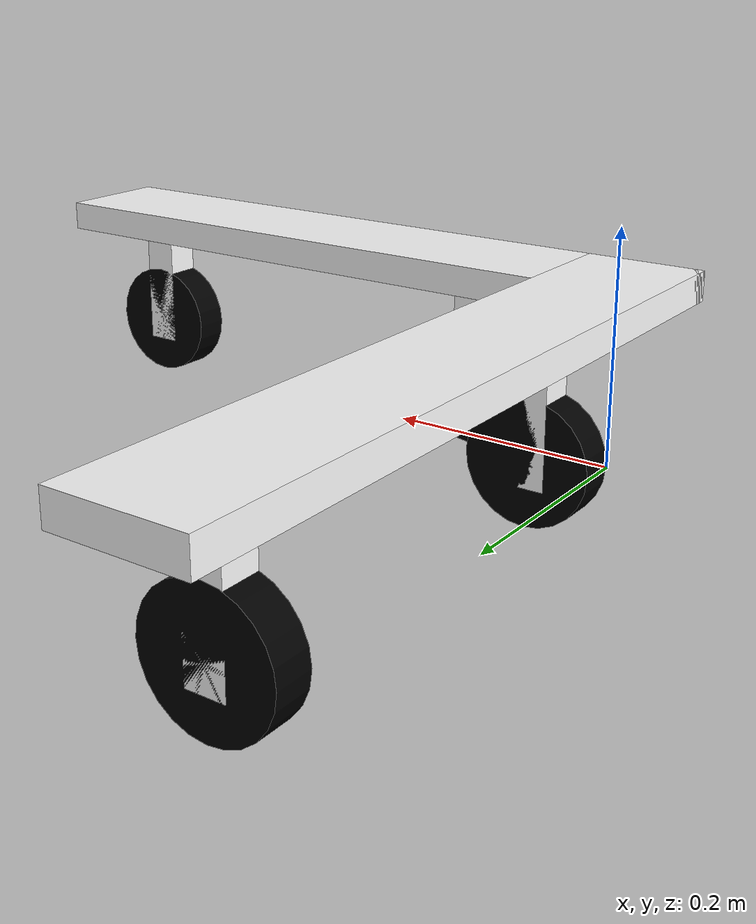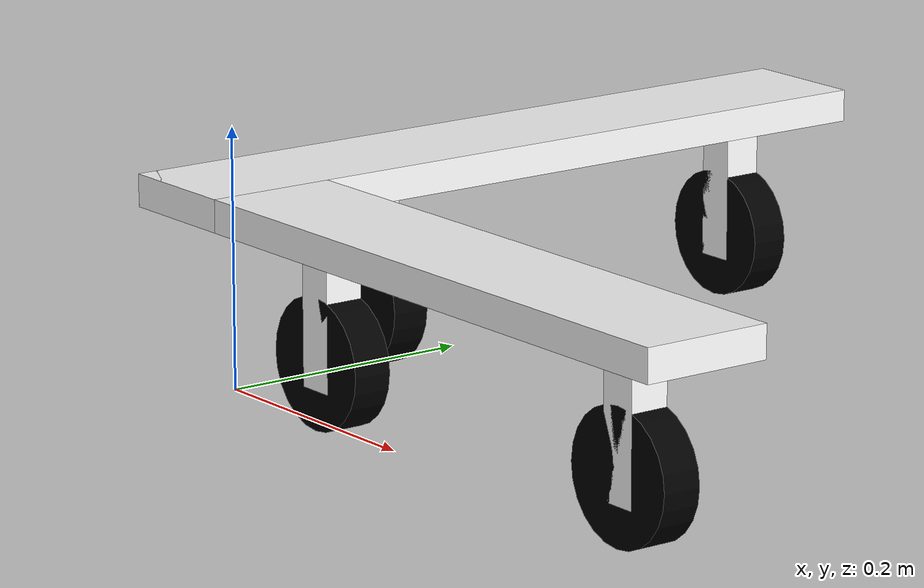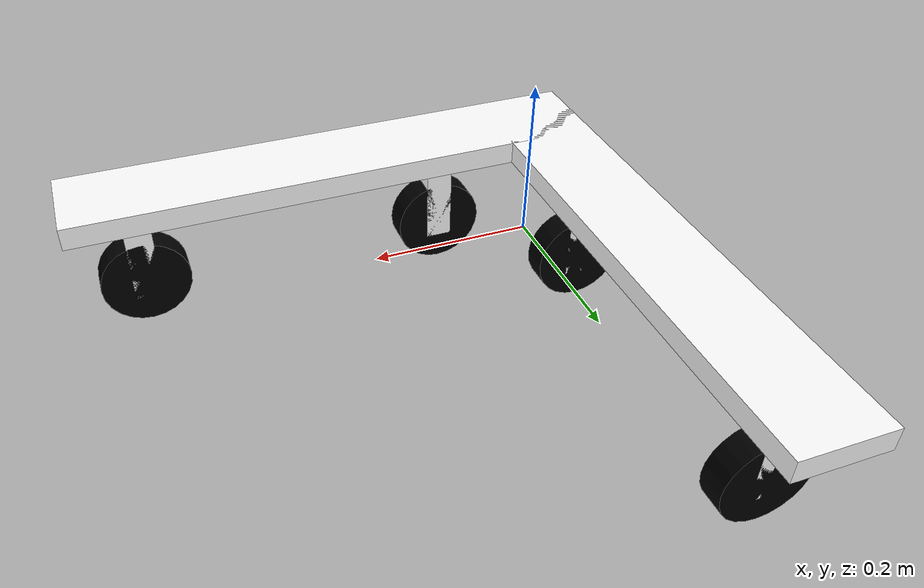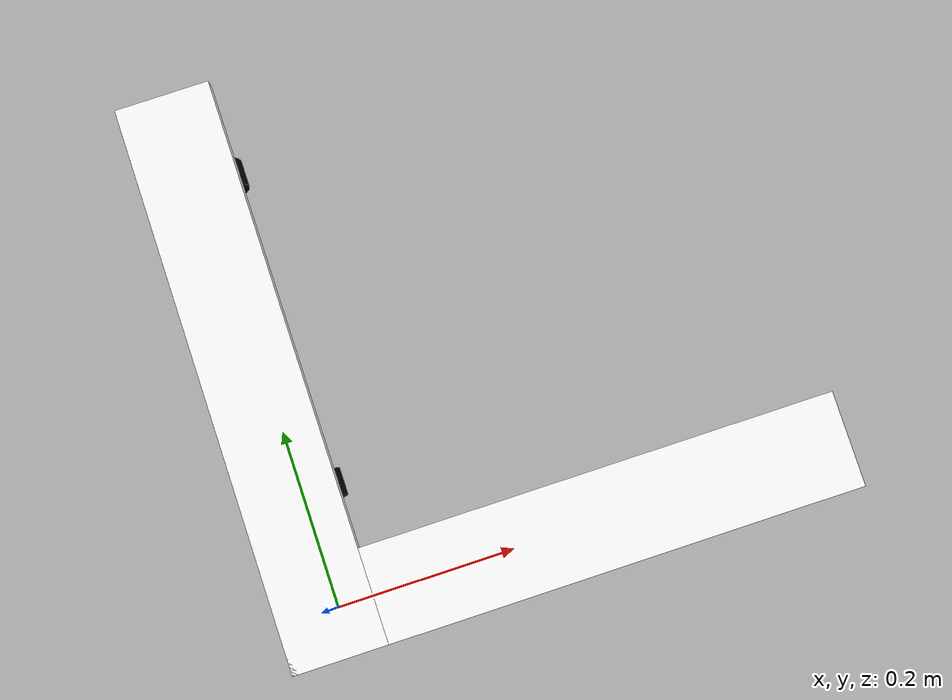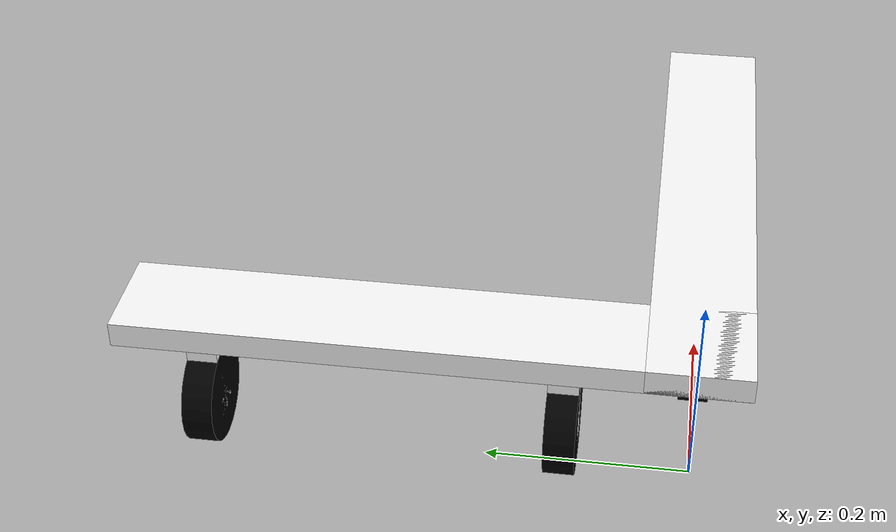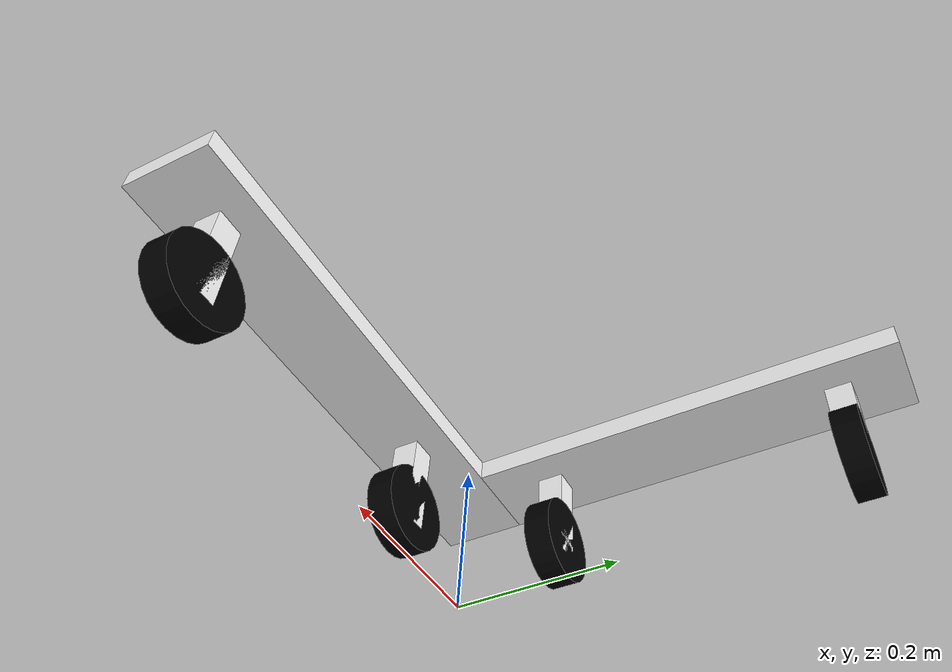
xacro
<?xml version="1.0"?>
<robot xmlns:xacro="http://www.ros.org/wiki/xacro" name="AR_0">

	<xacro:include filename="$(find robot_description_pkg)/urdf/wheel.urdf.xacro" />
	<xacro:include filename="$(find robot_description_pkg)/urdf/steering_column.urdf.xacro" />
	<xacro:include filename="$(find robot_description_pkg)/urdf/transmission.urdf.xacro" />
	<xacro:include filename="$(find robot_description_pkg)/urdf/arm.urdf.xacro" />

	<!-- properties -->
	<!--All units in m-kg-s-radians unit system -->
	<xacro:property name="M_PI" value="3.1415926535897931" />
	<xacro:property name="M_PI_2" value="1.570796327" />
	<xacro:property name="DEG_TO_RAD" value="0.017453293" />

	<!-- friction coefficients -->
	<xacro:property name="MU_1" value="10000" />
	<xacro:property name="MU_2" value="10000" />

	<xacro:property name="arm_mass" value="0.4" />
	<xacro:property name="steer_link_mass" value="0.5" />
	<xacro:property name="wheel_mass" value="0.3" />

	<xacro:property name="robot_height" value="0.15" />
	<xacro:property name="axis_offset" value="0.125" />
	<xacro:property name="steer_link_length" value="0.12" />
	<xacro:property name="steer_link_width" value="0.03" />
	<xacro:property name="wheel_radius" value="0.05" />
	<xacro:property name="wheel_width" value="0.03" />
	<xacro:property name="arm_length" value="0.6" />
	<xacro:property name="arm_width" value="0.1" />
	<xacro:property name="arm_thickness" value="0.025" />

	 <!-- Macros for calculating inertia -->
	<xacro:macro name="cylinder_inertia" params="m r h">
		<inertia  ixx="${m*(3*r*r+h*h)/12}" ixy = "0" ixz = "0"
		iyy="${m*(3*r*r+h*h)/12}" iyz = "0" izz="${m*r*r/2}" />
	</xacro:macro>

	<xacro:macro name="cuboid_inertia" params="m w h l">
		<inertia  ixx="${m*(h*h+l*l)/12}" ixy = "0" ixz = "0"
		iyy="${m*(w*w+l*l)/12}" iyz = "0" izz="${m*(h*h+w*w)/12}" />
	</xacro:macro>

	<!-- Materials -->
	<material name="black">
		<color rgba="0 0 0 1"/>
	</material>
	<material name="white">
		<color rgba="1 1 1 1"/>
	</material>

	<!-- BASE-FOOTPRINT -->
 	<!-- base_footprint is a fictitious link(frame)that is on the ground right below base_link origin -->
	<link name="base_footprint">
		<visual>
			<origin xyz="0 0 0" rpy="0 0 0" />
			<geometry>
				<box size="0.001 0.001 0.001" />
			</geometry>
		</visual>
	</link>

	<gazebo reference="base_footprint">
		<turnGravityOff>false</turnGravityOff>
	</gazebo>

	<!-- left arm -->
	<xacro:arm arm_name="left_arm" arm_length="${arm_length}" arm_width="${arm_width}"
						arm_thickness="${arm_thickness}" arm_mass="${arm_mass}"
						rotation_angle="0" X="${(arm_length-arm_width)/2}" Y="0" robot_height="${robot_height}" />

	<!-- right arm -->
	<xacro:arm arm_name="right_arm" arm_length="${arm_length}" arm_width="${arm_width}"
						arm_thickness="${arm_thickness}" arm_mass="${arm_mass}"
						rotation_angle="${M_PI_2}" X="0" Y="${(arm_length-arm_width)/2}" robot_height="${robot_height}" />

	<!-- Joint: connect arms to base -->
	<joint name="base_footprint_joint_l" type="fixed">
		<origin xyz="0 0 0" rpy="0 0 0" />
		<parent link="base_footprint"/>
		<child link="left_arm" />
	</joint>

	<joint name="base_footprint_joint_r" type="fixed">
		<origin xyz="0 0 0" rpy="0 0 0" />
		<parent link="base_footprint"/>
		<child link="right_arm" />
	</joint>

	<!-- steering link l1 -->
	<xacro:steering_column steering_link_name="steering_link_l1" steer_link_width=
		"${steer_link_width}" steer_link_length="${steer_link_length}" steer_link_mass="${steer_link_mass}" robot_height="${robot_height}" />

	<!-- steering link l2 -->
	<xacro:steering_column steering_link_name="steering_link_l2" steer_link_width=
		"${steer_link_width}" steer_link_length="${steer_link_length}" steer_link_mass="${steer_link_mass}" robot_height="${robot_height}" />

	<!-- steering link r1 -->
	<xacro:steering_column steering_link_name="steering_link_r1" steer_link_width=
		"${steer_link_width}" steer_link_length="${steer_link_length}" steer_link_mass="${steer_link_mass}" robot_height="${robot_height}" />

	<!-- steering link r2 -->
	<xacro:steering_column steering_link_name="steering_link_r2" steer_link_width=
		"${steer_link_width}" steer_link_length="${steer_link_length}" steer_link_mass="${steer_link_mass}" robot_height="${robot_height}" />

	<!-- yaw joint l1 -->
	<joint name="yaw_joint_l1" type="continuous">
		<parent link="left_arm"/>
		<child link="steering_link_l1"/>
		<origin xyz="${axis_offset} 0 0" rpy="0 0 ${M_PI}"/>
		<axis xyz="0 0 1"/>
	</joint>

	<!-- yaw joint l2 -->
	<joint name="yaw_joint_l2" type="continuous">
		<parent link="left_arm"/>
		<child link="steering_link_l2"/>
		<origin xyz="${arm_length-axis_offset} 0 0" rpy="0 0 ${M_PI}"/>
		<axis xyz="0 0 1"/>
	</joint>

	<!-- yaw joint r1 -->
	<joint name="yaw_joint_r1" type="continuous">
		<parent link="right_arm"/>
		<child link="steering_link_r1"/>
		<origin xyz="0 ${axis_offset} 0" rpy="0 0 ${M_PI}"/>
		<axis xyz="0 0 1"/>
	</joint>

	<!-- yaw joint r2 -->
	<joint name="yaw_joint_r2" type="continuous">
		<parent link="right_arm"/>
		<child link="steering_link_r2"/>
		<origin xyz="0 ${arm_length-axis_offset} 0" rpy="0 0 ${M_PI}"/>
		<axis xyz="0 0 1"/>
	</joint>

	<!-- wheel-r1 -->
	<xacro:wheel wheel_name="r1_wheel" wheel_width="${wheel_width}" wheel_radius="
		${wheel_radius}" wheel_mass="${wheel_mass}" MU_1="${MU_1}" MU_2="${MU_2}"
		M_PI_2="${M_PI_2}"/>

	<!-- wheel-r2 -->
	<xacro:wheel wheel_name="r2_wheel" wheel_width="${wheel_width}" wheel_radius="
		${wheel_radius}" wheel_mass="${wheel_mass}" MU_1="${MU_1}" MU_2="${MU_2}"
		M_PI_2="${M_PI_2}"/>

	<!-- wheel-l1 -->
	<xacro:wheel wheel_name="l1_wheel" wheel_width="${wheel_width}" wheel_radius="
		${wheel_radius}" wheel_mass="${wheel_mass}" MU_1="${MU_1}" MU_2="${MU_2}"
		M_PI_2="${M_PI_2}"/>

	<!-- wheel-l2 -->
	<xacro:wheel wheel_name="l2_wheel" wheel_width="${wheel_width}" wheel_radius="
		${wheel_radius}" wheel_mass="${wheel_mass}" MU_1="${MU_1}" MU_2="${MU_2}"
		M_PI_2="${M_PI_2}"/>

	<!-- drive joint r1 -->
	<joint name="drive_joint_r1" type="continuous">
		<parent link="steering_link_r1"/>
		<child link="r1_wheel"/>
		<origin xyz="0 0 ${wheel_radius}" rpy="0 0 -${M_PI_2}"/>
	</joint>

	<!-- drive joint r2 -->
	<joint name="drive_joint_r2" type="continuous">
		<parent link="steering_link_r2"/>
		<child link="r2_wheel"/>
		<origin xyz="0 0 ${wheel_radius}" rpy="0 0 -${M_PI_2}"/>
	</joint>

	<!-- drive joint l1 -->
	<joint name="drive_joint_l1" type="continuous">
		<parent link="steering_link_l1"/>
		<child link="l1_wheel"/>
		<origin xyz="0 0 ${wheel_radius}" rpy="0 0 -${M_PI_2}"/>
	</joint>

	<!-- drive joint l2 -->
	<joint name="drive_joint_l2" type="continuous">
		<parent link="steering_link_l2"/>
		<child link="l2_wheel"/>
		<origin xyz="0 0 ${wheel_radius}" rpy="0 0 -${M_PI_2}"/>
	</joint>

	<!-- Transmission: drive, select: effort/vel/pos interfaces -->
	<xacro:set_transmission transmission_name="l1_wheel_joint_trans" motor_name="l1_wheel_motor" interface="VelocityJointInterface" joint_name="drive_joint_l1" />

	<xacro:set_transmission transmission_name="l2_wheel_joint_trans" motor_name="l2_wheel_motor" interface="VelocityJointInterface" joint_name="drive_joint_l2" />

	<xacro:set_transmission transmission_name="r1_wheel_joint_trans" motor_name=
		"r1_wheel_motor" interface="VelocityJointInterface" joint_name="drive_joint_r1" />

	<xacro:set_transmission transmission_name="r2_wheel_joint_trans" motor_name=
		"r2_wheel_motor" interface="VelocityJointInterface" joint_name="drive_joint_r2" />

	<!-- Transmission: yaw -->
	<xacro:set_transmission transmission_name="l1_yaw_joint_trans" motor_name=
		"l1_steer_motor" interface="PositionJointInterface" joint_name="yaw_joint_l1" />

	<xacro:set_transmission transmission_name="l2_yaw_joint_trans" motor_name=
		"l2_steer_motor" interface="PositionJointInterface" joint_name="yaw_joint_l2" />

	<xacro:set_transmission transmission_name="r1_yaw_joint_trans" motor_name=
		"r1_steer_motor" interface="PositionJointInterface" joint_name="yaw_joint_r1" />

	<xacro:set_transmission transmission_name="r2_yaw_joint_trans" motor_name=
		"r2_steer_motor" interface="PositionJointInterface" joint_name="yaw_joint_r2" />

	<!-- ros_control plugin -->
	<gazebo>
		<plugin name="gazebo_ros_control" filename="libgazebo_ros_control.so">
			<robotBaseFrame>base_footprint</robotBaseFrame>
			<legacyModeNS>true</legacyModeNS>
		</plugin>
	</gazebo>

</robot>

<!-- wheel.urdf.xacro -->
<robot name="wheel" xmlns:xacro="http://www.ros.org/wiki/xacro">

	<xacro:macro name="wheel" params="wheel_name wheel_width wheel_radius wheel_mass
										MU_1 MU_2 M_PI_2">
		<link name="${wheel_name}">
			<visual>
				<origin xyz="0 0 0" rpy="0 ${M_PI_2} 0" />
				<geometry>
					<cylinder length="${wheel_width}" radius="${wheel_radius}" />
				</geometry>
				<material name="black"/>
			</visual>
			<collision>
				<origin xyz="0 0 0" rpy="0 ${M_PI_2} 0" />
				<geometry>
					<cylinder length="${wheel_width}" radius="${wheel_radius}" />
				</geometry>
			</collision>
			<inertial>
				<mass value="${wheel_mass}"/>
				<xacro:cylinder_inertia  m="${wheel_mass}" r="${wheel_radius}" h="${wheel_width}" />
			</inertial>
			<surface>
				<friction>
					<ode>
						<mu1 value="${MU_1}" />
						<mu2 value="${MU_2}" />
					</ode>
				</friction>
			</surface>
		</link>

		<gazebo reference="${wheel_name}">
			<turnGravityOff>false</turnGravityOff>
			<material>Gazebo/Black</material>
		</gazebo>

	</xacro:macro>
</robot>

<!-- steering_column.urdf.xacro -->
<robot name="wheel" xmlns:xacro="http://www.ros.org/wiki/xacro">

	<xacro:macro name="steering_column" params="steering_link_name steer_link_width steer_link_length steer_link_mass robot_height">

		<link name="${steering_link_name}">
			<visual>
				<geometry>
					<box size="${steer_link_width} ${steer_link_width} ${steer_link_length}"/>
				</geometry>
				<origin rpy="0 0 0" xyz="0 0 ${robot_height-steer_link_length/2}"/>
				<material name="white"/>
			</visual>
			<collision>
				<geometry>
					<box size="${steer_link_width} ${steer_link_width} ${steer_link_length/4}"/>
				</geometry>
				<origin rpy="0 0 0" xyz="0 0 ${robot_height-steer_link_length/2}"/>
			</collision>
			<inertial>
				<mass value="${steer_link_mass}"/>
				<xacro:cuboid_inertia m="${steer_link_mass}" w="${steer_link_width}" h="
					${steer_link_width}" l="${steer_link_length}" />
			</inertial>
		</link>

		<gazebo reference="${steering_link_name}">
			<turnGravityOff>false</turnGravityOff>
		</gazebo>
	</xacro:macro>
</robot>

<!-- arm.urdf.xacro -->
<robot name="arm" xmlns:xacro="http://www.ros.org/wiki/xacro">

	<xacro:macro name="arm" params="arm_name arm_length arm_width arm_thickness arm_mass
							 rotation_angle X Y robot_height">

		<link name="${arm_name}">
			<visual>
				<geometry>
					<box size="${arm_length} ${arm_width} ${arm_thickness}"/>
				</geometry>
				<origin rpy="0 0 ${rotation_angle}" xyz="${X} ${Y} ${robot_height}"/>
				<material name="white"/>
			</visual>
			<collision>
				<geometry>
					<box size="${arm_length} ${arm_width} ${arm_thickness}"/>
				</geometry>
				<origin rpy="0 0 ${rotation_angle}" xyz="${X} ${Y} ${robot_height}"/>
			</collision>
			<inertial>
				<mass value="${arm_mass}"/>
				<inertia ixx="${arm_mass}" ixy="0.0" ixz="0.0" iyy="${arm_mass}"
					iyz="0.0" izz="${arm_mass}"/>
			</inertial>
		</link>

		<gazebo reference="${arm_name}">
			<turnGravityOff>false</turnGravityOff>
		</gazebo>

	</xacro:macro>
</robot>
